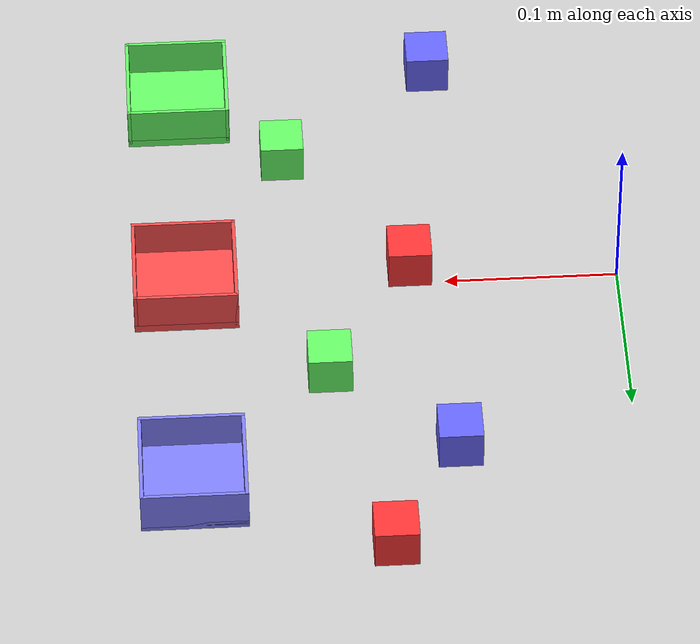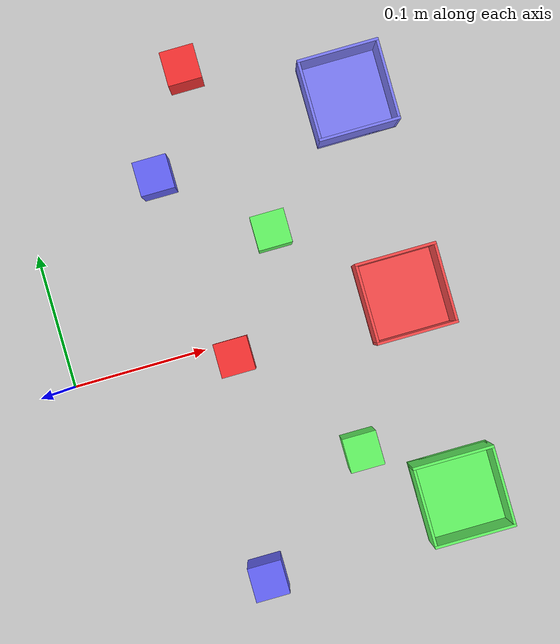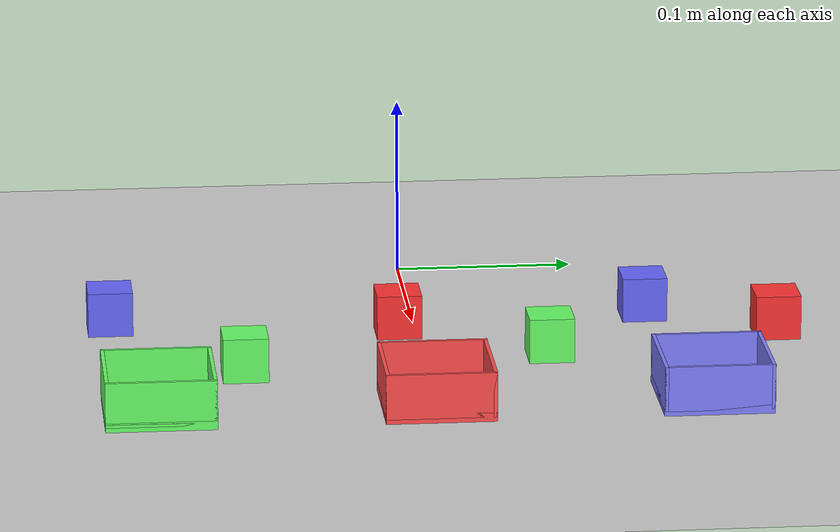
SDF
<sdf version='1.10'>
  <world name='empty'>
    <physics name='1ms' type='ignored'>
      <max_step_size>0.005</max_step_size>
      <real_time_factor>1</real_time_factor>
      <real_time_update_rate>500</real_time_update_rate>
    </physics>
    <plugin name='gz::sim::systems::Physics' filename='gz-sim-physics-system'/>
    <plugin name='gz::sim::systems::UserCommands' filename='gz-sim-user-commands-system'/>
    <plugin name='gz::sim::systems::SceneBroadcaster' filename='gz-sim-scene-broadcaster-system'/>
    <plugin name='gz::sim::systems::Contact' filename='gz-sim-contact-system'/>
    <gravity>0 0 -9.8000000000000007</gravity>
    <magnetic_field>5.5644999999999998e-06 2.2875799999999999e-05 -4.2388400000000002e-05</magnetic_field>
    <atmosphere type='adiabatic'/>
    <scene>
      <ambient>0.400000006 0.400000006 0.400000006 1</ambient>
      <background>0.699999988 0.699999988 0.699999988 1</background>
      <shadows>true</shadows>
    </scene>
    <model name='ground_plane'>
      <static>true</static>
      <link name='link'>
        <collision name='collision'>
          <geometry>
            <plane>
              <normal>0 0 1</normal>
              <size>1.5 1.5</size>
            </plane>
          </geometry>
          <surface>
            <friction>
              <ode>
                <mu>1.0</mu>
                <mu2>1.0</mu2>
              </ode>
            </friction>
            <bounce/>
            <contact/>
          </surface>
        </collision>
        <visual name='visual'>
          <geometry>
            <plane>
              <normal>0 0 1</normal>
              <size>1.5 1.5</size>
            </plane>
          </geometry>
          <material>
            <ambient>0.8 0.8 0.8 1</ambient>
            <diffuse>0.8 0.8 0.8 1</diffuse>
            <specular>0.8 0.8 0.8 1</specular>
          </material>
        </visual>
        <pose>0 0 0 0 0 0</pose>
        <inertial>
          <pose>0 0 0 0 0 0</pose>
          <mass>1</mass>
          <inertia>
            <ixx>1</ixx>
            <ixy>0</ixy>
            <ixz>0</ixz>
            <iyy>1</iyy>
            <iyz>0</iyz>
            <izz>1</izz>
          </inertia>
        </inertial>
        <enable_wind>false</enable_wind>
      </link>
      <pose>0 0 0 0 0 0</pose>
      <self_collide>false</self_collide>
    </model>

<!-- ✅ 큐브 6개 (자유 배치, 0.025m 정육면체) -->
<model name="cube_red_1">
  <static>false</static>
  <pose>0.14 0.2 0.0125 0 0 0</pose>
  <link name="link">
    <visual name="visual">
      <geometry><box><size>0.025 0.025 0.025</size></box></geometry>
      <material>
        <ambient>1 0.2 0.2 1</ambient>
        <diffuse>1 0.2 0.2 1</diffuse>
        <specular>0.3 0.3 0.3 1</specular>
      </material>
    </visual>
    <collision name="collision">
      <geometry><box><size>0.025 0.025 0.025</size></box></geometry>
      <surface>
        <friction>
          <ode>
            <mu>2.0</mu>
            <mu2>2.0</mu2>
          </ode>
        </friction>
        <contact>
          <ode>
            <kp>100000.0</kp>
            <kd>1.0</kd>
          </ode>
        </contact>
      </surface>
    </collision>

    <inertial>
      <mass>0.05</mass>
      <inertia ixx="0.0001" ixy="0.0" ixz="0.0"
               iyy="0.0001" iyz="0.0"
               izz="0.0001"/>
    </inertial>
  </link>
</model>

<model name="cube_blue_1">
  <static>false</static>
  <pose>0.10 0.13 0.0125 0 0 0</pose>
  <link name="link">
    <visual name="visual">
      <geometry><box><size>0.025 0.025 0.025</size></box></geometry>
      <material>
        <ambient>0.4 0.4 1 1</ambient>
        <diffuse>0.4 0.4 1 1</diffuse>
        <specular>0.3 0.3 0.3 1</specular>
      </material>
    </visual>
    <collision name="collision">
      <geometry><box><size>0.025 0.025 0.025</size></box></geometry>
      <surface>
        <friction>
          <ode>
            <mu>2.0</mu>
            <mu2>2.0</mu2>
          </ode>
        </friction>
        <contact>
          <ode>
            <kp>100000.0</kp>
            <kd>1.0</kd>
          </ode>
        </contact>
      </surface>
    </collision>

    <inertial>
      <mass>0.05</mass>
      <inertia ixx="0.0001" ixy="0.0" ixz="0.0"
               iyy="0.0001" iyz="0.0"
               izz="0.0001"/>
    </inertial>
  </link>
</model>

<model name="cube_green_1">
  <static>false</static>
  <pose>0.17 0.07 0.0125 0 0 0</pose>
  <link name="link">
    <visual name="visual">
      <geometry><box><size>0.025 0.025 0.025</size></box></geometry>
      <material>
        <ambient>0.4 1 0.4 1</ambient>
        <diffuse>0.4 1 0.4 1</diffuse>
        <specular>0.1 0.2 0.1 1</specular>
      </material>
    </visual>
    <collision name="collision">
      <geometry><box><size>0.025 0.025 0.025</size></box></geometry>
      <surface>
        <friction>
          <ode>
            <mu>2.0</mu>
            <mu2>2.0</mu2>
          </ode>
        </friction>
        <contact>
          <ode>
            <kp>100000.0</kp>
            <kd>1.0</kd>
          </ode>
        </contact>
      </surface>
    </collision>

    <inertial>
      <mass>0.05</mass>
      <inertia ixx="0.0001" ixy="0.0" ixz="0.0"
               iyy="0.0001" iyz="0.0"
               izz="0.0001"/>
    </inertial>
  </link>
</model>

<model name="cube_red_2">
  <static>false</static>
  <pose>0.12 -0.01 0.0125 0 0 0</pose>
  <link name="link">
    <visual name="visual">
      <geometry><box><size>0.025 0.025 0.025</size></box></geometry>
      <material>
        <ambient>1 0.2 0.2 1</ambient>
        <diffuse>1 0.2 0.2 1</diffuse>
        <specular>0.3 0.3 0.3 1</specular>
      </material>
    </visual>
    <collision name="collision">
      <geometry><box><size>0.025 0.025 0.025</size></box></geometry>
      <surface>
        <friction>
          <ode>
            <mu>2.0</mu>
            <mu2>2.0</mu2>
          </ode>
        </friction>
        <contact>
          <ode>
            <kp>100000.0</kp>
            <kd>1.0</kd>
          </ode>
        </contact>
      </surface>
    </collision>

    <inertial>
      <mass>0.05</mass>
      <inertia ixx="0.0001" ixy="0.0" ixz="0.0"
               iyy="0.0001" iyz="0.0"
               izz="0.0001"/>
    </inertial>
  </link>
</model>

<model name="cube_green_2">
  <static>false</static>
  <pose>0.19 -0.1 0.0125 0 0 0</pose>
  <link name="link">
    <visual name="visual">
      <geometry><box><size>0.025 0.025 0.025</size></box></geometry>
      <material>
        <ambient>0.4 1 0.4 1</ambient>
        <diffuse>0.4 1 0.4 1</diffuse>
        <specular>0.1 0.2 0.1 1</specular>
      </material>
    </visual>
    <collision name="collision">
      <geometry><box><size>0.025 0.025 0.025</size></box></geometry>
      <surface>
        <friction>
          <ode>
            <mu>2.0</mu>
            <mu2>2.0</mu2>
          </ode>
        </friction>
        <contact>
          <ode>
            <kp>100000.0</kp>
            <kd>1.0</kd>
          </ode>
        </contact>
      </surface>
    </collision>

    <inertial>
      <mass>0.05</mass>
      <inertia ixx="0.0001" ixy="0.0" ixz="0.0"
               iyy="0.0001" iyz="0.0"
               izz="0.0001"/>
    </inertial>
  </link>
</model>

<model name="cube_blue_2">
  <static>false</static>
  <pose>0.1 -0.17 0.0125 0 0 0</pose>
  <link name="link">
    <visual name="visual">
      <geometry><box><size>0.025 0.025 0.025</size></box></geometry>
      <material>
        <ambient>0.4 0.4 1 1</ambient>
        <diffuse>0.4 0.4 1 1</diffuse>
        <specular>0.3 0.3 0.3 1</specular>
      </material>
    </visual>
    <collision name="collision">
      <geometry><box><size>0.025 0.025 0.025</size></box></geometry>
      <surface>
        <friction>
          <ode>
            <mu>2.0</mu>
            <mu2>2.0</mu2>
          </ode>
        </friction>
        <contact>
          <ode>
            <kp>100000.0</kp>
            <kd>1.0</kd>
          </ode>
        </contact>
      </surface>
    </collision>

    <inertial>
      <mass>0.05</mass>
      <inertia ixx="0.0001" ixy="0.0" ixz="0.0"
               iyy="0.0001" iyz="0.0"
               izz="0.0001"/>
    </inertial>
  </link>
</model>

<!-- 🔵 plate_blue -->
<model name="plate_blue">
  <static>true</static>
  <pose>0.25 0.15 0.0025 0 0 0</pose>

  <link name="base">
    <visual name="bottom">
      <geometry><box><size>0.06 0.06 0.005</size></box></geometry>
      <material>
        <ambient>0.5 0.5 1 1</ambient>
        <diffuse>0.5 0.5 1 1</diffuse>
        <specular>0.1 0.1 0.2 1</specular>
      </material>
    </visual>
    <collision name="bottom_col">
      <geometry><box><size>0.06 0.06 0.005</size></box></geometry>
    </collision>
  </link>

  <link name="wall_front">
    <pose>0 -0.029 0.0125 0 0 0</pose>
    <visual name="visual">
      <geometry><box><size>0.06 0.002 0.025</size></box></geometry>
      <material>
        <ambient>0.5 0.5 1 1</ambient>
        <diffuse>0.5 0.5 1 1</diffuse>
        <specular>0.1 0.1 0.2 1</specular>
      </material>
    </visual>
    <collision name="collision">
      <geometry><box><size>0.06 0.002 0.025</size></box></geometry>
    </collision>
  </link>

  <link name="wall_back">
    <pose>0 0.029 0.0125 0 0 0</pose>
    <visual name="visual">
      <geometry><box><size>0.06 0.002 0.025</size></box></geometry>
      <material>
        <ambient>0.5 0.5 1 1</ambient>
        <diffuse>0.5 0.5 1 1</diffuse>
        <specular>0.1 0.1 0.2 1</specular>
      </material>
    </visual>
    <collision name="collision">
      <geometry><box><size>0.06 0.002 0.025</size></box></geometry>
    </collision>
  </link>

  <link name="wall_left">
    <pose>-0.029 0 0.0125 0 0 0</pose>
    <visual name="visual">
      <geometry><box><size>0.002 0.06 0.025</size></box></geometry>
      <material>
        <ambient>0.5 0.5 1 1</ambient>
        <diffuse>0.5 0.5 1 1</diffuse>
        <specular>0.1 0.1 0.2 1</specular>
      </material>
    </visual>
    <collision name="collision">
      <geometry><box><size>0.002 0.06 0.025</size></box></geometry>
    </collision>
  </link>

  <link name="wall_right">
    <pose>0.029 0 0.0125 0 0 0</pose>
    <visual name="visual">
      <geometry><box><size>0.002 0.06 0.025</size></box></geometry>
      <material>
        <ambient>0.5 0.5 1 1</ambient>
        <diffuse>0.5 0.5 1 1</diffuse>
        <specular>0.1 0.1 0.2 1</specular>
      </material>
    </visual>
    <collision name="collision">
      <geometry><box><size>0.002 0.06 0.025</size></box></geometry>
    </collision>
  </link>
</model>

<!-- 🔴 plate_red -->
<model name="plate_red">
  <static>true</static>
  <pose>0.25 0.0 0.0025 0 0 0</pose>

  <link name="base">
    <visual name="bottom">
      <geometry><box><size>0.06 0.06 0.005</size></box></geometry>
      <material>
        <ambient>1 0.3 0.3 1</ambient>
        <diffuse>1 0.3 0.3 1</diffuse>
        <specular>0.2 0.1 0.1 1</specular>
      </material>
    </visual>
    <collision name="bottom_col">
      <geometry><box><size>0.06 0.06 0.005</size></box></geometry>
    </collision>
  </link>

  <link name="wall_front">
    <pose>0 -0.029 0.0125 0 0 0</pose>
    <visual name="visual">
      <geometry><box><size>0.06 0.002 0.025</size></box></geometry>
      <material>
        <ambient>1 0.3 0.3 1</ambient>
        <diffuse>1 0.3 0.3 1</diffuse>
        <specular>0.2 0.1 0.1 1</specular>
      </material>
    </visual>
    <collision name="collision">
      <geometry><box><size>0.06 0.002 0.025</size></box></geometry>
    </collision>
  </link>

  <link name="wall_back">
    <pose>0 0.029 0.0125 0 0 0</pose>
    <visual name="visual">
      <geometry><box><size>0.06 0.002 0.025</size></box></geometry>
      <material>
        <ambient>1 0.3 0.3 1</ambient>
        <diffuse>1 0.3 0.3 1</diffuse>
        <specular>0.2 0.1 0.1 1</specular>
      </material>
    </visual>
    <collision name="collision">
      <geometry><box><size>0.06 0.002 0.025</size></box></geometry>
    </collision>
  </link>

  <link name="wall_left">
    <pose>-0.029 0 0.0125 0 0 0</pose>
    <visual name="visual">
      <geometry><box><size>0.002 0.06 0.025</size></box></geometry>
      <material>
        <ambient>1 0.3 0.3 1</ambient>
        <diffuse>1 0.3 0.3 1</diffuse>
        <specular>0.2 0.1 0.1 1</specular>
      </material>
    </visual>
    <collision name="collision">
      <geometry><box><size>0.002 0.06 0.025</size></box></geometry>
    </collision>
  </link>

  <link name="wall_right">
    <pose>0.029 0 0.0125 0 0 0</pose>
    <visual name="visual">
      <geometry><box><size>0.002 0.06 0.025</size></box></geometry>
      <material>
        <ambient>1 0.3 0.3 1</ambient>
        <diffuse>1 0.3 0.3 1</diffuse>
        <specular>0.2 0.1 0.1 1</specular>
      </material>
    </visual>
    <collision name="collision">
      <geometry><box><size>0.002 0.06 0.025</size></box></geometry>
    </collision>
  </link>
</model>

<!-- 🟢 plate_green -->
<model name="plate_green">
  <static>true</static>
  <pose>0.25 -0.15 0.0025 0 0 0</pose>

  <link name="base">
    <visual name="bottom">
      <geometry><box><size>0.06 0.06 0.005</size></box></geometry>
      <material>
        <ambient>0.4 1 0.4 1</ambient>
        <diffuse>0.4 1 0.4 1</diffuse>
        <specular>0.1 0.2 0.1 1</specular>
      </material>
    </visual>
    <collision name="bottom_col">
      <geometry><box><size>0.06 0.06 0.005</size></box></geometry>
    </collision>
  </link>

  <link name="wall_front">
    <pose>0 -0.029 0.0125 0 0 0</pose>
    <visual name="visual">
      <geometry><box><size>0.06 0.002 0.025</size></box></geometry>
      <material>
        <ambient>0.4 1 0.4 1</ambient>
        <diffuse>0.4 1 0.4 1</diffuse>
        <specular>0.1 0.2 0.1 1</specular>
      </material>
    </visual>
    <collision name="collision">
      <geometry><box><size>0.06 0.002 0.025</size></box></geometry>
    </collision>
  </link>

  <link name="wall_back">
    <pose>0 0.029 0.0125 0 0 0</pose>
    <visual name="visual">
      <geometry><box><size>0.06 0.002 0.025</size></box></geometry>
      <material>
        <ambient>0.4 1 0.4 1</ambient>
        <diffuse>0.4 1 0.4 1</diffuse>
        <specular>0.1 0.2 0.1 1</specular>
      </material>
    </visual>
    <collision name="collision">
      <geometry><box><size>0.06 0.002 0.025</size></box></geometry>
    </collision>
  </link>

  <link name="wall_left">
    <pose>-0.029 0 0.0125 0 0 0</pose>
    <visual name="visual">
      <geometry><box><size>0.002 0.06 0.025</size></box></geometry>
      <material>
        <ambient>0.4 1 0.4 1</ambient>
        <diffuse>0.4 1 0.4 1</diffuse>
        <specular>0.1 0.2 0.1 1</specular>
      </material>
    </visual>
    <collision name="collision">
      <geometry><box><size>0.002 0.06 0.025</size></box></geometry>
    </collision>
  </link>

  <link name="wall_right">
    <pose>0.029 0 0.0125 0 0 0</pose>
    <visual name="visual">
      <geometry><box><size>0.002 0.06 0.025</size></box></geometry>
      <material>
        <ambient>0.4 1 0.4 1</ambient>
        <diffuse>0.4 1 0.4 1</diffuse>
        <specular>0.1 0.2 0.1 1</specular>
      </material>
    </visual>
    <collision name="collision">
      <geometry><box><size>0.002 0.06 0.025</size></box></geometry>
    </collision>
  </link>
</model>

<gui>
  <camera name="user_camera">
    <pose>0 0 10 0 -1.57 0</pose>
  </camera>
</gui>

    <light name='sun' type='directional'>
      <pose>0 0 10 0 0 0</pose>
      <cast_shadows>true</cast_shadows>
      <intensity>1</intensity>
      <direction>-0.5 0.10000000000000001 -0.90000000000000002</direction>
      <diffuse>0.800000012 0.800000012 0.800000012 1</diffuse>
      <specular>0.200000003 0.200000003 0.200000003 1</specular>
      <attenuation>
        <range>1000</range>
        <linear>0.01</linear>
        <constant>0.90000000000000002</constant>
        <quadratic>0.001</quadratic>
      </attenuation>
      <spot>
        <inner_angle>0</inner_angle>
        <outer_angle>0</outer_angle>
        <falloff>0</falloff>
      </spot>
    </light>

  </world>
</sdf>
